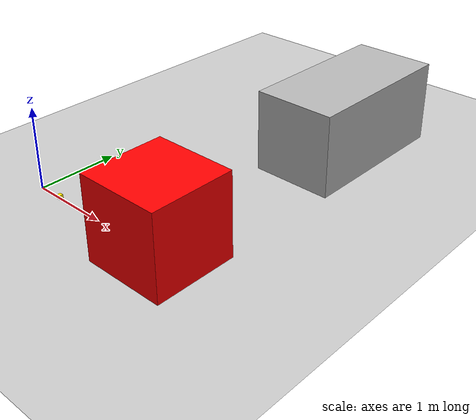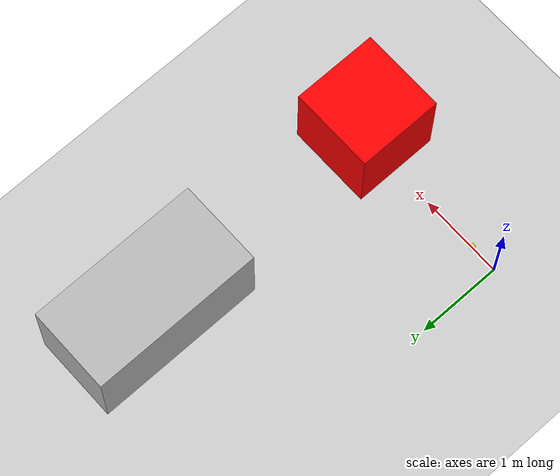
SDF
<?xml version="1.0" ?>
<!-- Gazebo Classic compatible world -->
<sdf version="1.6">
  <world name="robot_obstacle_world">
    <!-- Physics properties -->
    <physics name="default_physics" type="ode">
      <max_step_size>0.001</max_step_size>
      <real_time_update_rate>1000.0</real_time_update_rate>
    </physics>

    <!-- 环境光和方向光 -->
    <scene>
      <ambient>0.4 0.4 0.4 1</ambient>
    </scene>
    <light type="directional" name="sun">
      <cast_shadows>true</cast_shadows>
      <direction>-0.5 0.5 -1</direction>
      <diffuse>1 1 1 1</diffuse>
      <specular>0.1 0.1 0.1 1</specular>
    </light>

    <!-- 地面平面 -->
    <model name="ground_plane">
      <static>true</static>
      <link name="link">
        <collision name="collision">
          <geometry>
            <plane>
              <normal>0 0 1</normal>
              <size>100 100</size>
            </plane>
          </geometry>
        </collision>
        <visual name="visual">
          <geometry>
            <plane>
              <normal>0 0 1</normal>
              <size>100 100</size>
            </plane>
          </geometry>
          <material>
            <ambient>0.8 0.8 0.8 1</ambient>
            <diffuse>0.8 0.8 0.8 1</diffuse>
          </material>
        </visual>
      </link>
    </model>

    <!-- 几个箱子做障碍物 -->
    <model name="box1">
      <pose>2 0 0.5 0 0 0</pose>
      <link name="link">
        <visual name="visual">
          <geometry><box><size>1 1 1</size></box></geometry>
          <material><diffuse>1 0 0 1</diffuse></material>
        </visual>
        <collision name="collision">
          <geometry><box><size>1 1 1</size></box></geometry>
        </collision>
      </link>
    </model>

    <model name="box2">
      <pose>2 3 0.5 0 0 0</pose>
      <link name="link">
        <visual name="visual">
          <geometry><box><size>1 2 1</size></box></geometry>
        </visual>
        <collision name="collision">
          <geometry><box><size>1 2 1</size></box>
          </geometry>
        </collision>
      </link>
    </model>

    <!-- Pickable object for autonomous picking demo -->
    <model name="pickup_box">
      <pose>0.33 0 0.025 0 0 0</pose>
      <link name="link">
        <collision name="collision">
          <geometry>
            <box>
              <size>0.05 0.05 0.05</size>
            </box>
          </geometry>
        </collision>
        <visual name="visual">
          <geometry>
            <box>
              <size>0.05 0.05 0.05</size>
            </box>
          </geometry>
          <material>
            <ambient>1.0 0.8 0.0 1</ambient>
            <diffuse>1.0 0.9 0.0 1</diffuse>
          </material>
        </visual>
        <inertial>
          <mass>0.1</mass>
          <inertia>
            <ixx>0.0001</ixx>
            <iyy>0.0001</iyy>
            <izz>0.0001</izz>
          </inertia>
        </inertial>
      </link>
    </model>

    <!-- Robot model will be spawned here by the launch file -->

    <gravity>0 0 -9.8</gravity>
  </world>
</sdf>
